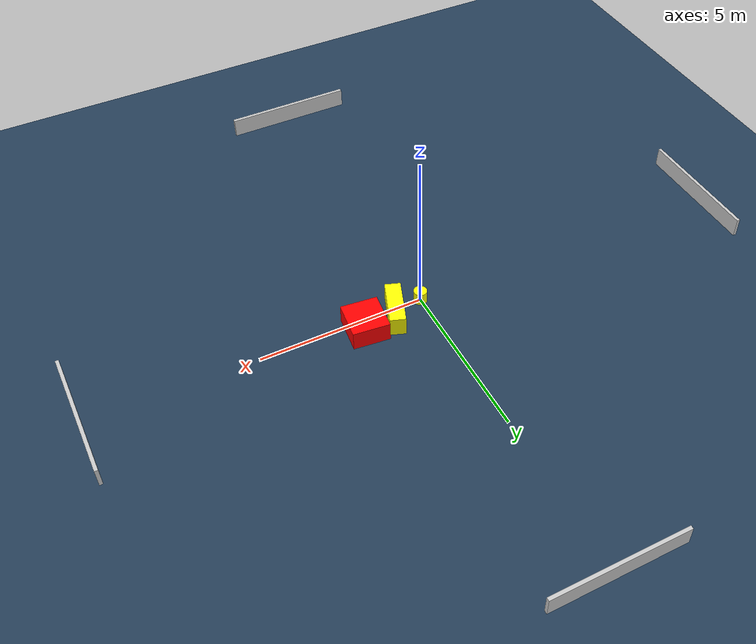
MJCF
<?xml version="1.0" ?>
<mujoco model="generated_environment">
  <option timestep="0.01" integrator="RK4" cone="elliptic"/>
  <default>
    <geom density="1"/>
  </default>
  <asset>
    <texture builtin="gradient" height="3072" name="skybox" rgb1="0.3 0.5 0.7" rgb2="0 0 0" type="skybox" width="512"/>
    <texture builtin="checker" height="300" name="groundplane" rgb1="0.2 0.3 0.4" rgb2="0.1 0.2 0.3" type="2d" width="300"/>
    <material name="groundplane" reflectance="0.2" texrepeat="5 5" texture="groundplane"/>
  </asset>
  <worldbody>
    <light dir="0 0 -1" directional="true" pos="0 0 1.5"/>
    <geom condim="3" friction="0.5 0.005 0.001" material="groundplane" name="floor" pos="0 0 0" size="0 0 0.05" type="plane"/>
    <body name="walls">
      <geom name="wall_1" condim="4" pos="-10.0 0.0 0.3" rgba="0.800000011920929 0.800000011920929 0.800000011920929 1.0" size="0.05 2.0 0.3" type="box"/>
      <geom name="wall_2" condim="4" pos="10.0 0.0 0.3" rgba="0.800000011920929 0.800000011920929 0.800000011920929 1.0" size="0.05 2.0 0.3" type="box"/>
      <geom name="wall_3" condim="4" pos="0.0 -10.0 0.3" rgba="0.800000011920929 0.800000011920929 0.800000011920929 1.0" size="2.0 0.05 0.3" type="box"/>
      <geom name="wall_4" condim="4" pos="0.0 10.0 0.3" rgba="0.800000011920929 0.800000011920929 0.800000011920929 1.0" size="2.0 0.05 0.3" type="box"/>
    </body>
    <body name="robot">
      <joint name="joint_x" type="slide" pos="0 0 0" axis="1 0 0"/>
      <joint name="joint_y" type="slide" pos="0 0 0" axis="0 1 0"/>
      <geom name="robot" type="cylinder" pos="0.0 0.0 0.2" size="0.2 0.2 0.0" mass="5.0" friction="1.0 0.005 0.0001" condim="4" rgba="1.0 1.0 0.0 1.0"/>
    </body>
    <body name="obstacle_1_movable">
      <geom name="obstacle_1_movable" condim="4" pos="0.9229428467998599 0.22552446827141134 0.3" euler="0 0 69.97537028124525" friction="0.0 0.005 0.001" rgba="1.0 1.0 0.0 1.0" size="0.718965162664017 0.2350562884782229 0.3" type="box" mass="0.1"/>
      <joint type="free"/>
    </body>
    <body name="obstacle_2_static">
      <geom name="obstacle_2_static" condim="4" pos="1.918244144368984 0.3254599562682856 0.3" euler="0 0 353.75895686019294" friction="0.0 0.005 0.001" rgba="1.0 0.0 0.0 1.0" size="0.5482175626810815 0.571147921162185 0.3" type="box"/>
    </body>
  </worldbody>
  <actuator>
    <motor name="actuator_x" joint="joint_x" gear="1" ctrlrange="-1 1"/>
    <motor name="actuator_y" joint="joint_y" gear="1" ctrlrange="-1 1"/>
  </actuator>
</mujoco>
